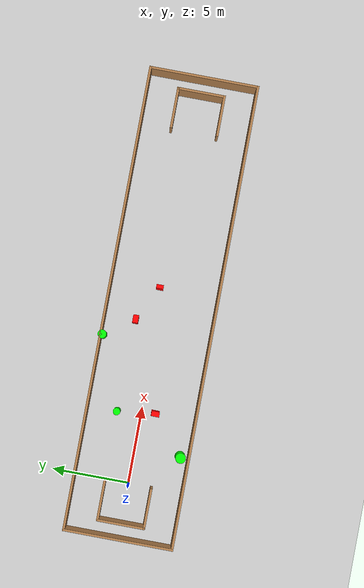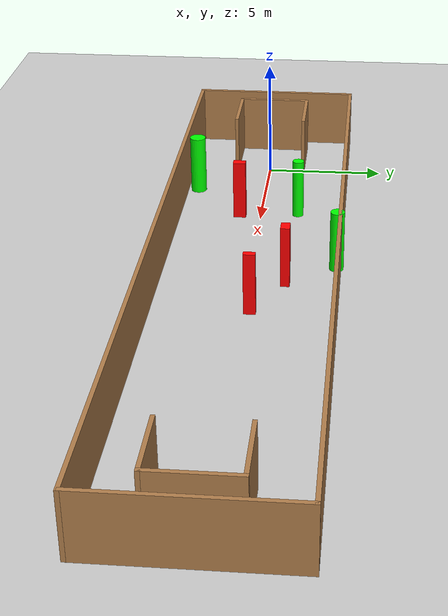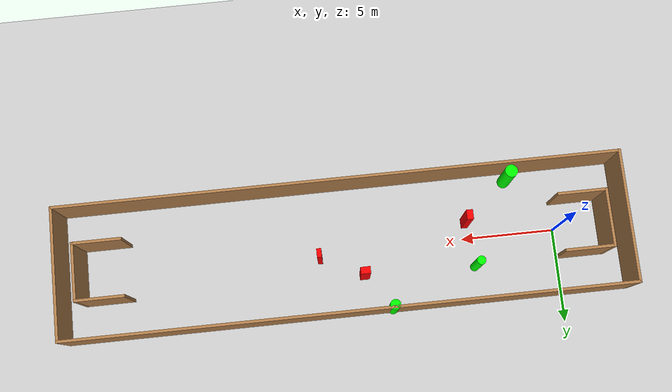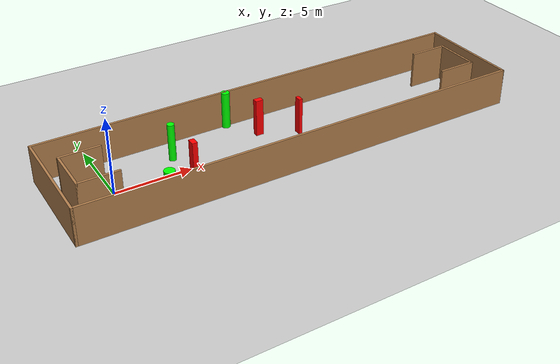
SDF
<sdf version="1.7">
 <world name="default">
  <light name="sun" type="directional">
   <pose>0 0 10 0 -0 0</pose>
   <diffuse>0.8 0.8 0.8 1</diffuse>
   <specular>0.2 0.2 0.2 1</specular>
   <attenuation>
    <range>1000</range>
    <constant>0.9</constant>
    <linear>0.01</linear>
    <quadratic>0.001</quadratic>
   </attenuation>
   <direction>-0.5 0.1 -0.9</direction>
   <spot><inner_angle>0</inner_angle><outer_angle>0</outer_angle><falloff>0</falloff></spot>
  </light>
  <model name="ground_plane">
   <static>1</static>
   <link name="link">
    <collision name="collision">
     <geometry><plane><normal>0 0 1</normal><size>100 100</size></plane></geometry>
     <surface>
      <contact><collide_bitmask>65535</collide_bitmask></contact>
      <friction><ode><mu>100</mu><mu2>50</mu2></ode></friction>
     </surface>
    </collision>
    <visual name="visual">
     <cast_shadows>0</cast_shadows>
     <geometry><plane><normal>0 0 1</normal><size>100 100</size></plane></geometry>
     <material>
      <script><uri>file://media/materials/scripts/gazebo.material</uri><name>Gazebo/Grey</name></script>
     </material>
    </visual>
   </link>
  </model>
  <gravity>0 0 -9.8</gravity>
  <magnetic_field>6e-06 2.3e-05 -4.2e-05</magnetic_field>
  <atmosphere type="adiabatic"/>
  <physics type="ode">
   <max_step_size>0.001</max_step_size>
   <real_time_factor>1</real_time_factor>
   <real_time_update_rate>1000</real_time_update_rate>
  </physics>
  <scene><ambient>0.4 0.4 0.4 1</ambient><background>0.7 0.7 0.7 1</background><shadows>1</shadows></scene>
  <spherical_coordinates>
   <surface_model>EARTH_WGS84</surface_model>
   <latitude_deg>0</latitude_deg>
   <longitude_deg>0</longitude_deg>
   <elevation>0</elevation>
   <heading_deg>0</heading_deg>
  </spherical_coordinates>
  <model name="my_base_walls">
   <link name="Wall_0">
    <collision name="Wall_0_Collision">
     <geometry><box><size>7.15 0.15 2.5</size></box></geometry>
     <pose>0 0 1.25 0 -0 0</pose>
    </collision>
    <visual name="Wall_0_Visual">
     <pose>0 0 1.25 0 -0 0</pose>
     <geometry><box><size>7.15 0.15 2.5</size></box></geometry>
     <material>
      <script><uri>file://media/materials/scripts/gazebo.material</uri><name>Gazebo/Wood</name></script>
      <ambient>1 1 1 1</ambient>
     </material>
     <meta><layer>0</layer></meta>
    </visual>
    <pose>-15 0 0 0 -0 1.5708</pose>
   </link>
   <link name="Wall_10">
    <collision name="Wall_10_Collision">
     <geometry><box><size>2.65 0.15 2.5</size></box></geometry>
     <pose>0 0 1.25 0 -0 0</pose>
    </collision>
    <visual name="Wall_10_Visual">
     <pose>0 0 1.25 0 -0 0</pose>
     <geometry><box><size>2.65 0.15 2.5</size></box></geometry>
     <material>
      <script><uri>file://media/materials/scripts/gazebo.material</uri><name>Gazebo/Wood</name></script>
      <ambient>1 1 1 1</ambient>
     </material>
     <meta><layer>0</layer></meta>
    </visual>
    <pose>-12.75 -1.5 0 0 -0 0</pose>
   </link>
   <link name="Wall_12">
    <collision name="Wall_12_Collision">
     <geometry><box><size>2.65 0.15 2.5</size></box></geometry>
     <pose>0 0 1.25 0 -0 0</pose>
    </collision>
    <visual name="Wall_12_Visual">
     <pose>0 0 1.25 0 -0 0</pose>
     <geometry><box><size>2.65 0.15 2.5</size></box></geometry>
     <material>
      <script><uri>file://media/materials/scripts/gazebo.material</uri><name>Gazebo/Wood</name></script>
      <ambient>1 1 1 1</ambient>
     </material>
     <meta><layer>0</layer></meta>
    </visual>
    <pose>-12.75 1.5 0 0 -0 0</pose>
   </link>
   <link name="Wall_14">
    <collision name="Wall_14_Collision">
     <geometry><box><size>3.15 0.15 2.5</size></box></geometry>
     <pose>0 0 1.25 0 -0 0</pose>
    </collision>
    <visual name="Wall_14_Visual">
     <pose>0 0 1.25 0 -0 0</pose>
     <geometry><box><size>3.15 0.15 2.5</size></box></geometry>
     <material>
      <script><uri>file://media/materials/scripts/gazebo.material</uri><name>Gazebo/Wood</name></script>
      <ambient>1 1 1 1</ambient>
     </material>
     <meta><layer>0</layer></meta>
    </visual>
    <pose>14 0 0 0 -0 -1.5708</pose>
   </link>
   <link name="Wall_15">
    <collision name="Wall_15_Collision">
     <geometry><box><size>2.65 0.15 2.5</size></box></geometry>
     <pose>0 0 1.25 0 -0 0</pose>
    </collision>
    <visual name="Wall_15_Visual">
     <pose>0 0 1.25 0 -0 0</pose>
     <geometry><box><size>2.65 0.15 2.5</size></box></geometry>
     <material>
      <script><uri>file://media/materials/scripts/gazebo.material</uri><name>Gazebo/Wood</name></script>
      <ambient>1 1 1 1</ambient>
     </material>
     <meta><layer>0</layer></meta>
    </visual>
    <pose>12.75 -1.5 0 0 -0 3.14159</pose>
   </link>
   <link name="Wall_17">
    <collision name="Wall_17_Collision">
     <geometry><box><size>2.65 0.15 2.5</size></box></geometry>
     <pose>0 0 1.25 0 -0 0</pose>
    </collision>
    <visual name="Wall_17_Visual">
     <pose>0 0 1.25 0 -0 0</pose>
     <geometry><box><size>2.65 0.15 2.5</size></box></geometry>
     <material>
      <script><uri>file://media/materials/scripts/gazebo.material</uri><name>Gazebo/Wood</name></script>
      <ambient>1 1 1 1</ambient>
     </material>
     <meta><layer>0</layer></meta>
    </visual>
    <pose>12.75 1.5 0 0 -0 3.14159</pose>
   </link>
   <link name="Wall_2">
    <collision name="Wall_2_Collision">
     <geometry><box><size>30.15 0.15 2.5</size></box></geometry>
     <pose>0 0 1.25 0 -0 0</pose>
    </collision>
    <visual name="Wall_2_Visual">
     <pose>0 0 1.25 0 -0 0</pose>
     <geometry><box><size>30.15 0.15 2.5</size></box></geometry>
     <material>
      <script><uri>file://media/materials/scripts/gazebo.material</uri><name>Gazebo/Wood</name></script>
      <ambient>1 1 1 1</ambient>
     </material>
     <meta><layer>0</layer></meta>
    </visual>
    <pose>-0 -3.5 0 0 -0 0</pose>
   </link>
   <link name="Wall_4">
    <collision name="Wall_4_Collision">
     <geometry><box><size>30.15 0.15 2.5</size></box></geometry>
     <pose>0 0 1.25 0 -0 0</pose>
    </collision>
    <visual name="Wall_4_Visual">
     <pose>0 0 1.25 0 -0 0</pose>
     <geometry><box><size>30.15 0.15 2.5</size></box></geometry>
     <material>
      <script><uri>file://media/materials/scripts/gazebo.material</uri><name>Gazebo/Wood</name></script>
      <ambient>1 1 1 1</ambient>
     </material>
     <meta><layer>0</layer></meta>
    </visual>
    <pose>-0 3.5 0 0 -0 0</pose>
   </link>
   <link name="Wall_6">
    <collision name="Wall_6_Collision">
     <geometry><box><size>7.15 0.15 2.5</size></box></geometry>
     <pose>0 0 1.25 0 -0 0</pose>
    </collision>
    <visual name="Wall_6_Visual">
     <pose>0 0 1.25 0 -0 0</pose>
     <geometry><box><size>7.15 0.15 2.5</size></box></geometry>
     <material>
      <script><uri>file://media/materials/scripts/gazebo.material</uri><name>Gazebo/Wood</name></script>
      <ambient>1 1 1 1</ambient>
     </material>
     <meta><layer>0</layer></meta>
    </visual>
    <pose>15 0 0 0 -0 -1.5708</pose>
   </link>
   <link name="Wall_9">
    <collision name="Wall_9_Collision">
     <geometry><box><size>3.15 0.15 2.5</size></box></geometry>
     <pose>0 0 1.25 0 -0 0</pose>
    </collision>
    <visual name="Wall_9_Visual">
     <pose>0 0 1.25 0 -0 0</pose>
     <geometry><box><size>3.15 0.15 2.5</size></box></geometry>
     <material>
      <script><uri>file://media/materials/scripts/gazebo.material</uri><name>Gazebo/Wood</name></script>
      <ambient>1 1 1 1</ambient>
     </material>
     <meta><layer>0</layer></meta>
    </visual>
    <pose>-14 0 0 0 -0 -1.5708</pose>
   </link>
   <static>1</static>
   <pose>11.5 0 0 0 -0 0</pose>
  </model>
  <model name="cylinder1">
   <static>1</static>
   <link name="link">
    <inertial>
     <mass>1</mass>
     <inertia><ixx>0.5</ixx><ixy>0</ixy><ixz>0</ixz><iyy>0.5</iyy><iyz>0</iyz><izz>1</izz></inertia>
    </inertial>
    <collision name="collision">
     <geometry><cylinder><radius>0.2330121057686847</radius><length>2.5</length></cylinder></geometry>
    </collision>
    <visual name="visual">
     <geometry><cylinder><radius>0.2330121057686847</radius><length>2.5</length></cylinder></geometry>
     <material>
      <ambient>0 1 0 1</ambient>
      <diffuse>0 1 0 1</diffuse>
      <specular>0.1 0.1 0.1 1</specular>
      <emissive>0 0 0 0</emissive>
     </material>
    </visual>
   </link>
   <pose>4.4804695712512554 1.5680965032093859 1.25 0 0 0</pose>
  </model>
  <model name="cylinder2">
   <static>1</static>
   <link name="link">
    <inertial>
     <mass>1</mass>
     <inertia><ixx>0.5</ixx><ixy>0</ixy><ixz>0</ixz><iyy>0.5</iyy><iyz>0</iyz><izz>1</izz></inertia>
    </inertial>
    <collision name="collision">
     <geometry><cylinder><radius>0.2782465994220584</radius><length>2.5</length></cylinder></geometry>
    </collision>
    <visual name="visual">
     <geometry><cylinder><radius>0.2782465994220584</radius><length>2.5</length></cylinder></geometry>
     <material>
      <ambient>0 1 0 1</ambient>
      <diffuse>0 1 0 1</diffuse>
      <specular>0.1 0.1 0.1 1</specular>
      <emissive>0 0 0 0</emissive>
     </material>
    </visual>
   </link>
   <pose>9.15319225832369 3.3893109828381007 1.25 0 0 0</pose>
  </model>
  <model name="cylinder3">
   <static>1</static>
   <link name="link">
    <inertial>
     <mass>1</mass>
     <inertia><ixx>0.5</ixx><ixy>0</ixy><ixz>0</ixz><iyy>0.5</iyy><iyz>0</iyz><izz>1</izz></inertia>
    </inertial>
    <collision name="collision">
     <geometry><cylinder><radius>0.33564053866801685</radius><length>2.5</length></cylinder></geometry>
    </collision>
    <visual name="visual">
     <geometry><cylinder><radius>0.33564053866801685</radius><length>2.5</length></cylinder></geometry>
     <material>
      <ambient>0 1 0 1</ambient>
      <diffuse>0 1 0 1</diffuse>
      <specular>0.1 0.1 0.1 1</specular>
      <emissive>0 0 0 0</emissive>
     </material>
    </visual>
   </link>
   <pose>2.3078081529610053 -2.972503898124485 1.25 0 0 0</pose>
  </model>
  <model name="box1">
   <static>1</static>
   <link name="link">
    <inertial>
     <mass>1</mass>
     <inertia><ixx>0.083</ixx><ixy>0</ixy><ixz>0</ixz><iyy>0.083</iyy><iyz>0</iyz><izz>0.083</izz></inertia>
    </inertial>
    <collision name="collision">
     <geometry><box><size>0.513728881975938 0.3595281487423513 2.5</size></box></geometry>
    </collision>
    <visual name="visual">
     <geometry><box><size>0.513728881975938 0.3595281487423513 2.5</size></box></geometry>
     <material>
      <ambient>1 0 0 1</ambient>
      <diffuse>1 0 0 1</diffuse>
      <specular>0.1 0.1 0.1 1</specular>
      <emissive>0 0 0 0</emissive>
     </material>
    </visual>
    <sensor name="my_contact" type="contact">
     <contact><collision>box_collision</collision><topic>__default_topic__</topic></contact>
    </sensor>
   </link>
   <pose>10.491104294283707 1.4647600202330544 1.25 0 0 0</pose>
  </model>
  <model name="box2">
   <static>1</static>
   <link name="link">
    <inertial>
     <mass>1</mass>
     <inertia><ixx>0.083</ixx><ixy>0</ixy><ixz>0</ixz><iyy>0.083</iyy><iyz>0</iyz><izz>0.083</izz></inertia>
    </inertial>
    <collision name="collision">
     <geometry><box><size>0.3409228896644479 0.5174090704943355 2.5</size></box></geometry>
    </collision>
    <visual name="visual">
     <geometry><box><size>0.3409228896644479 0.5174090704943355 2.5</size></box></geometry>
     <material>
      <ambient>1 0 0 1</ambient>
      <diffuse>1 0 0 1</diffuse>
      <specular>0.1 0.1 0.1 1</specular>
      <emissive>0 0 0 0</emissive>
     </material>
    </visual>
    <sensor name="my_contact" type="contact">
     <contact><collision>box_collision</collision><topic>__default_topic__</topic></contact>
    </sensor>
   </link>
   <pose>4.772718157706187 -0.8827537893107493 1.25 0 0 0</pose>
  </model>
  <model name="box3">
   <static>1</static>
   <link name="link">
    <inertial>
     <mass>1</mass>
     <inertia><ixx>0.083</ixx><ixy>0</ixy><ixz>0</ixz><iyy>0.083</iyy><iyz>0</iyz><izz>0.083</izz></inertia>
    </inertial>
    <collision name="collision">
     <geometry><box><size>0.24562576894247426 0.4586915075198745 2.5</size></box></geometry>
    </collision>
    <visual name="visual">
     <geometry><box><size>0.24562576894247426 0.4586915075198745 2.5</size></box></geometry>
     <material>
      <ambient>1 0 0 1</ambient>
      <diffuse>1 0 0 1</diffuse>
      <specular>0.1 0.1 0.1 1</specular>
      <emissive>0 0 0 0</emissive>
     </material>
    </visual>
    <sensor name="my_contact" type="contact">
     <contact><collision>box_collision</collision><topic>__default_topic__</topic></contact>
    </sensor>
   </link>
   <pose>12.796153996368043 0.31602871521179177 1.25 0 0 0</pose>
  </model>
 </world>
</sdf>
